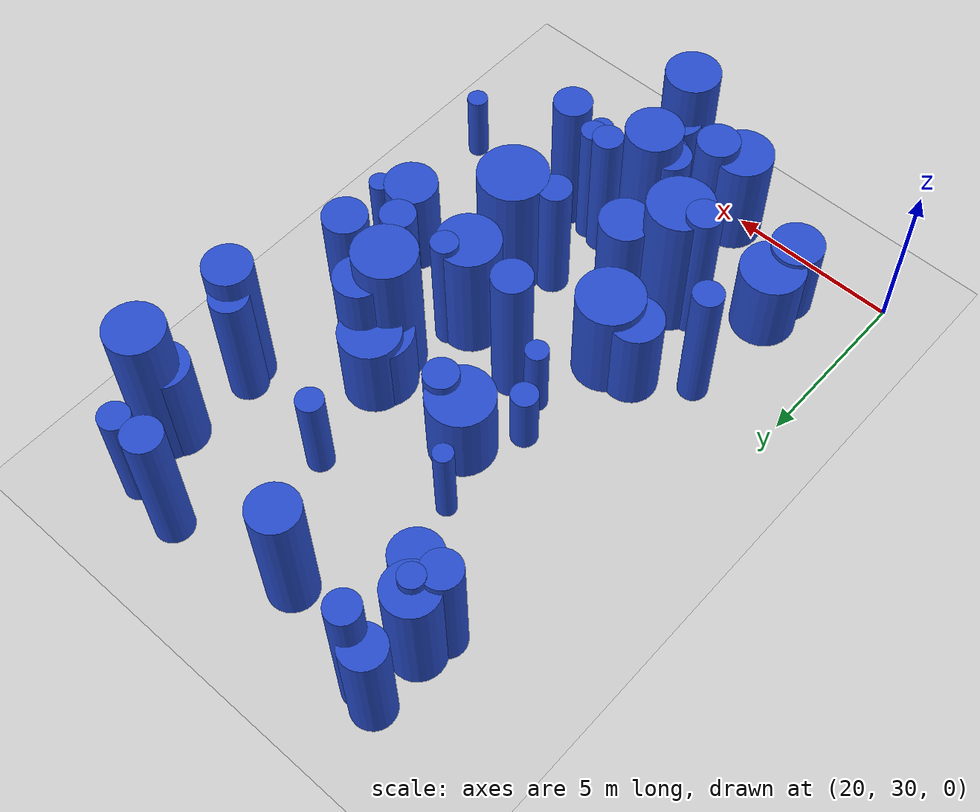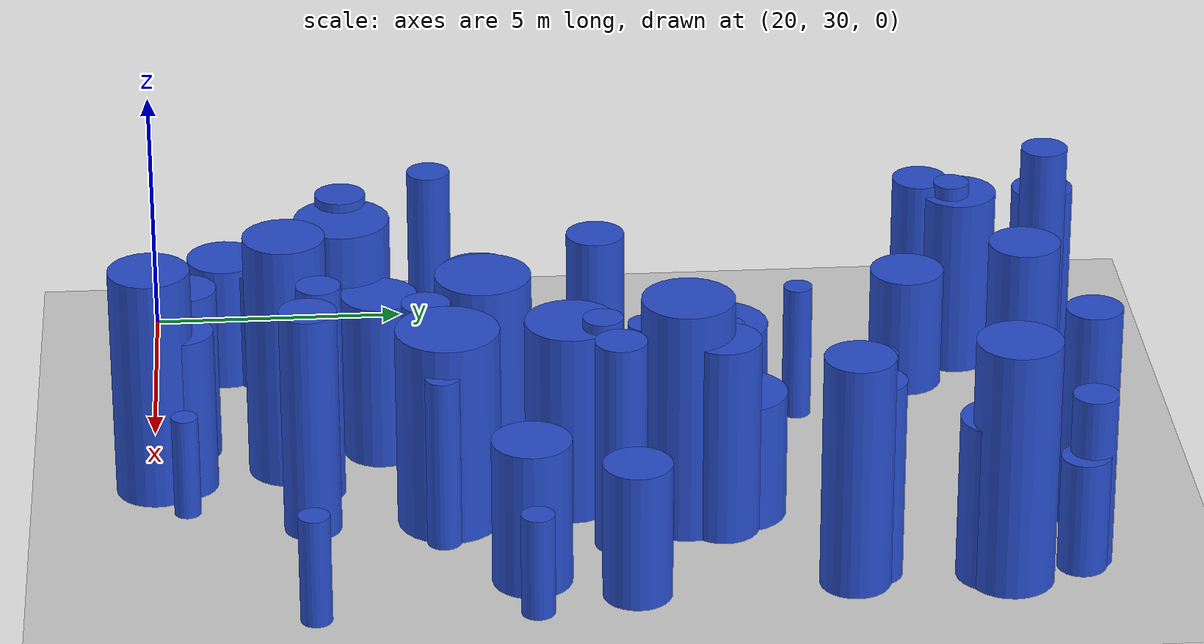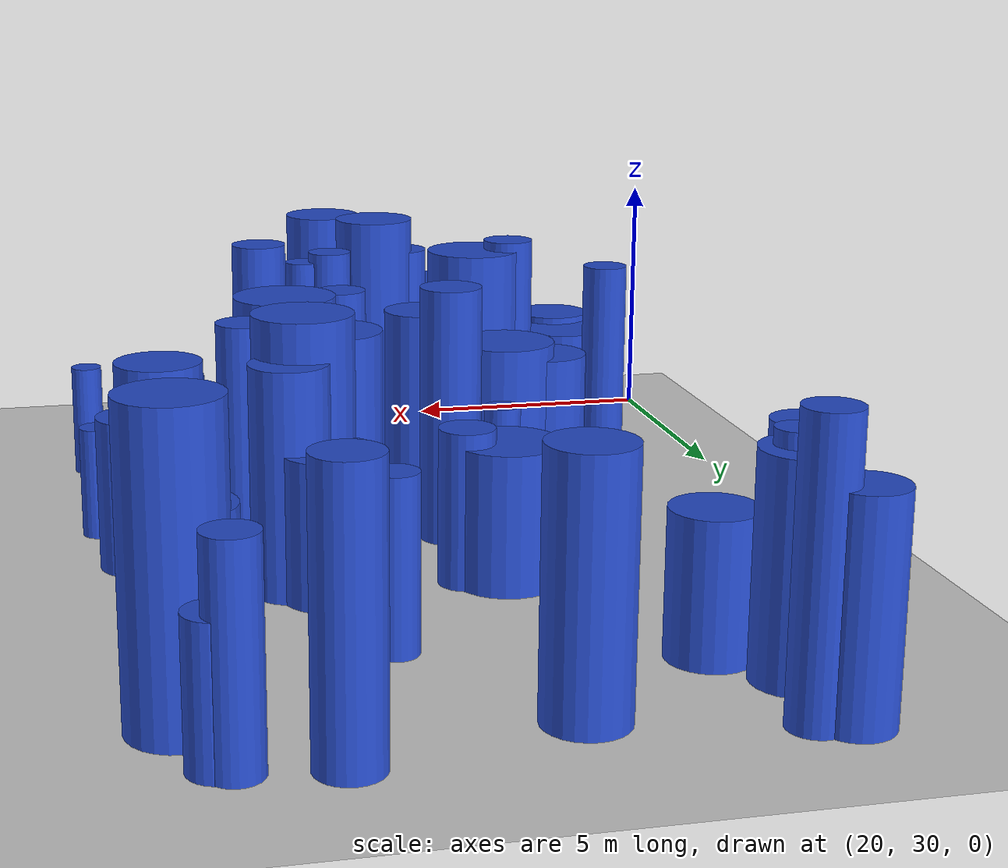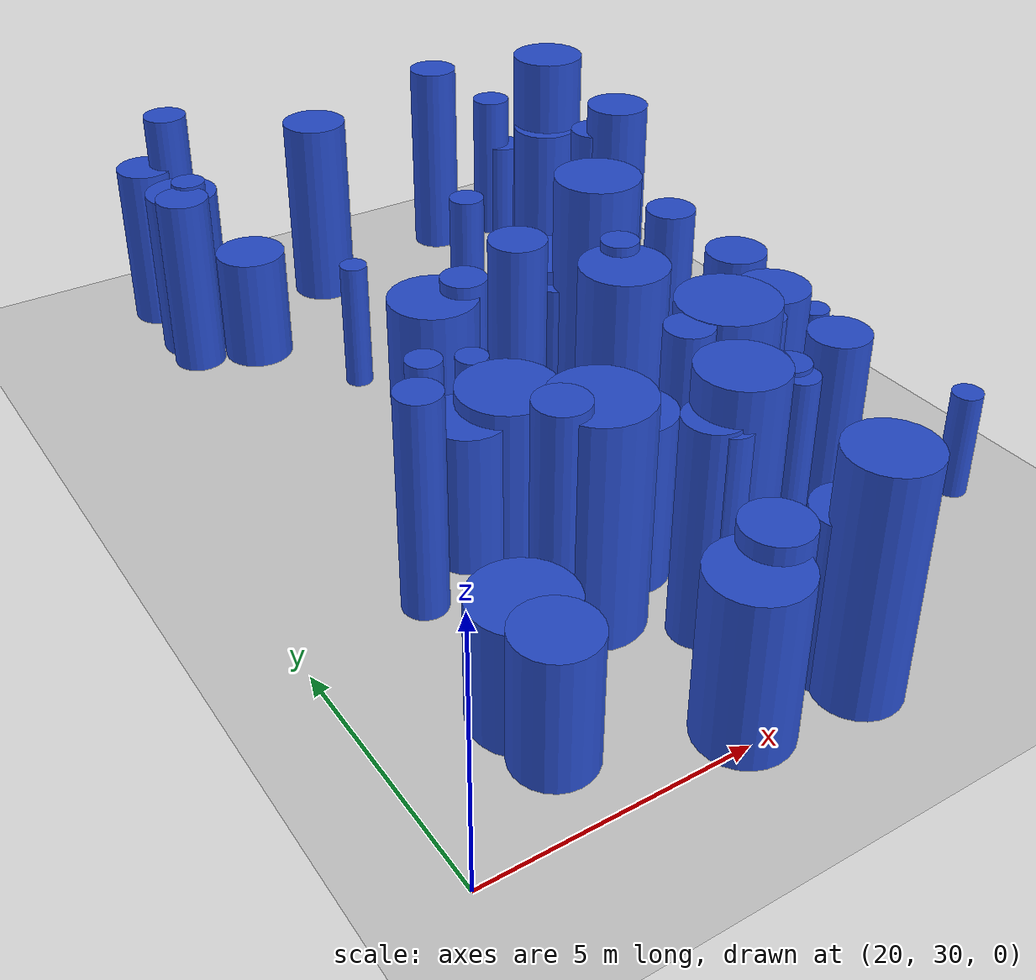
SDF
<sdf version="1.6">
 <world name="default">
  <model name="ground_plane">
   <static>1</static>
   <link name="link">
    <collision name="collision">
     <geometry><plane><normal>0 0 1</normal><size>100 100</size></plane></geometry>
     <surface><friction><ode><mu>100</mu><mu2>50</mu2></ode></friction></surface>
    </collision>
    <visual name="visual">
     <cast_shadows>0</cast_shadows>
     <geometry><plane><normal>0 0 1</normal><size>100 100</size></plane></geometry>
     <material>
      <script><uri>file://media/materials/scripts/gazebo.material</uri><name>Gazebo/Grey</name></script>
     </material>
    </visual>
   </link>
  </model>
  <model name="3">
   <static>0</static>
   <link name="link">
    <inertial>
     <mass>2</mass>
     <inertia><ixx>2.87295</ixx><ixy>0</ixy><ixz>0</ixz><iyy>2.87295</iyy><iyz>0</iyz><izz>0.289082</izz></inertia>
    </inertial>
    <collision name="collision">
     <geometry><cylinder><length>4.04604</length><radius>0.537664</radius></cylinder></geometry>
     <surface><contact><collide_without_contact>1</collide_without_contact></contact></surface>
    </collision>
    <visual name="visual">
     <geometry><cylinder><length>4.04604</length><radius>0.537664</radius></cylinder></geometry>
     <material>
      <script><uri>file://media/materials/scripts/gazebo.material</uri><name>Gazebo/Blue</name></script>
     </material>
    </visual>
    <gravity>0</gravity>
   </link>
   <pose>31.5919 43.4807 2.02302 0 -0 0</pose>
  </model>
  <model name="7">
   <static>0</static>
   <link name="link">
    <inertial>
     <mass>2</mass>
     <inertia><ixx>1.4943</ixx><ixy>0</ixy><ixz>0</ixz><iyy>1.4943</iyy><iyz>0</iyz><izz>0.904454</izz></inertia>
    </inertial>
    <collision name="collision">
     <geometry><cylinder><length>2.50048</length><radius>0.951028</radius></cylinder></geometry>
     <surface><contact><collide_without_contact>1</collide_without_contact></contact></surface>
    </collision>
    <visual name="visual">
     <geometry><cylinder><length>2.50048</length><radius>0.951028</radius></cylinder></geometry>
     <material>
      <script><uri>file://media/materials/scripts/gazebo.material</uri><name>Gazebo/Blue</name></script>
     </material>
    </visual>
    <gravity>0</gravity>
   </link>
   <pose>25.9011 41.0667 1.25024 0 -0 0</pose>
  </model>
  <model name="25">
   <static>0</static>
   <link name="link">
    <inertial>
     <mass>2</mass>
     <inertia><ixx>3.93705</ixx><ixy>0</ixy><ixz>0</ixz><iyy>3.93705</iyy><iyz>0</iyz><izz>0.614086</izz></inertia>
    </inertial>
    <collision name="collision">
     <geometry><cylinder><length>4.66691</length><radius>0.783636</radius></cylinder></geometry>
     <surface><contact><collide_without_contact>1</collide_without_contact></contact></surface>
    </collision>
    <visual name="visual">
     <geometry><cylinder><length>4.66691</length><radius>0.783636</radius></cylinder></geometry>
     <material>
      <script><uri>file://media/materials/scripts/gazebo.material</uri><name>Gazebo/Blue</name></script>
     </material>
    </visual>
    <gravity>0</gravity>
   </link>
   <pose>27.2784 30.0628 2.33346 0 -0 0</pose>
  </model>
  <model name="32">
   <static>0</static>
   <link name="link">
    <inertial>
     <mass>2</mass>
     <inertia><ixx>2.84004</ixx><ixy>0</ixy><ixz>0</ixz><iyy>2.84004</iyy><iyz>0</iyz><izz>0.148295</izz></inertia>
    </inertial>
    <collision name="collision">
     <geometry><cylinder><length>4.07374</length><radius>0.385092</radius></cylinder></geometry>
     <surface><contact><collide_without_contact>1</collide_without_contact></contact></surface>
    </collision>
    <visual name="visual">
     <geometry><cylinder><length>4.07374</length><radius>0.385092</radius></cylinder></geometry>
     <material>
      <script><uri>file://media/materials/scripts/gazebo.material</uri><name>Gazebo/Blue</name></script>
     </material>
    </visual>
    <gravity>0</gravity>
   </link>
   <pose>28.69 38.5987 2.03687 0 -0 0</pose>
  </model>
  <model name="54">
   <static>0</static>
   <link name="link">
    <inertial>
     <mass>2</mass>
     <inertia><ixx>2.65312</ixx><ixy>0</ixy><ixz>0</ixz><iyy>2.65312</iyy><iyz>0</iyz><izz>0.12546</izz></inertia>
    </inertial>
    <collision name="collision">
     <geometry><cylinder><length>3.94237</length><radius>0.354204</radius></cylinder></geometry>
     <surface><contact><collide_without_contact>1</collide_without_contact></contact></surface>
    </collision>
    <visual name="visual">
     <geometry><cylinder><length>3.94237</length><radius>0.354204</radius></cylinder></geometry>
     <material>
      <script><uri>file://media/materials/scripts/gazebo.material</uri><name>Gazebo/Blue</name></script>
     </material>
    </visual>
    <gravity>0</gravity>
   </link>
   <pose>22.8106 45.9834 1.97119 0 -0 0</pose>
  </model>
  <model name="58">
   <static>0</static>
   <link name="link">
    <inertial>
     <mass>2</mass>
     <inertia><ixx>1.07348</ixx><ixy>0</ixy><ixz>0</ixz><iyy>1.07348</iyy><iyz>0</iyz><izz>0.109076</izz></inertia>
    </inertial>
    <collision name="collision">
     <geometry><cylinder><length>2.47258</length><radius>0.330266</radius></cylinder></geometry>
     <surface><contact><collide_without_contact>1</collide_without_contact></contact></surface>
    </collision>
    <visual name="visual">
     <geometry><cylinder><length>2.47258</length><radius>0.330266</radius></cylinder></geometry>
     <material>
      <script><uri>file://media/materials/scripts/gazebo.material</uri><name>Gazebo/Blue</name></script>
     </material>
    </visual>
    <gravity>0</gravity>
   </link>
   <pose>25.3786 38.7126 1.23629 0 -0 0</pose>
  </model>
  <model name="61">
   <static>0</static>
   <link name="link">
    <inertial>
     <mass>2</mass>
     <inertia>
      <ixx>0.755586</ixx>
      <ixy>0</ixy>
      <ixz>0</ixz>
      <iyy>0.755586</iyy>
      <iyz>0</iyz>
      <izz>0.100977</izz>
     </inertia>
    </inertial>
    <collision name="collision">
     <geometry><cylinder><length>2.05684</length><radius>0.317769</radius></cylinder></geometry>
     <surface><contact><collide_without_contact>1</collide_without_contact></contact></surface>
    </collision>
    <visual name="visual">
     <geometry><cylinder><length>2.05684</length><radius>0.317769</radius></cylinder></geometry>
     <material>
      <script><uri>file://media/materials/scripts/gazebo.material</uri><name>Gazebo/Blue</name></script>
     </material>
    </visual>
    <gravity>0</gravity>
   </link>
   <pose>32.6546 37.1213 1.02842 0 -0 0</pose>
  </model>
  <model name="64">
   <static>0</static>
   <link name="link">
    <inertial>
     <mass>2</mass>
     <inertia><ixx>3.72268</ixx><ixy>0</ixy><ixz>0</ixz><iyy>3.72268</iyy><iyz>0</iyz><izz>0.868696</izz></inertia>
    </inertial>
    <collision name="collision">
     <geometry><cylinder><length>4.44185</length><radius>0.932039</radius></cylinder></geometry>
     <surface><contact><collide_without_contact>1</collide_without_contact></contact></surface>
    </collision>
    <visual name="visual">
     <geometry><cylinder><length>4.44185</length><radius>0.932039</radius></cylinder></geometry>
     <material>
      <script><uri>file://media/materials/scripts/gazebo.material</uri><name>Gazebo/Blue</name></script>
     </material>
    </visual>
    <gravity>0</gravity>
   </link>
   <pose>24.749 33.7716 2.22092 0 -0 0</pose>
  </model>
  <model name="66">
   <static>0</static>
   <link name="link">
    <inertial>
     <mass>2</mass>
     <inertia><ixx>2.90411</ixx><ixy>0</ixy><ixz>0</ixz><iyy>2.90411</iyy><iyz>0</iyz><izz>0.1065</izz></inertia>
    </inertial>
    <collision name="collision">
     <geometry><cylinder><length>4.13584</length><radius>0.326343</radius></cylinder></geometry>
     <surface><contact><collide_without_contact>1</collide_without_contact></contact></surface>
    </collision>
    <visual name="visual">
     <geometry><cylinder><length>4.13584</length><radius>0.326343</radius></cylinder></geometry>
     <material>
      <script><uri>file://media/materials/scripts/gazebo.material</uri><name>Gazebo/Blue</name></script>
     </material>
    </visual>
    <gravity>0</gravity>
   </link>
   <pose>28.1602 32.8868 2.06792 0 -0 0</pose>
  </model>
  <model name="81">
   <static>0</static>
   <link name="link">
    <inertial>
     <mass>2</mass>
     <inertia><ixx>2.82695</ixx><ixy>0</ixy><ixz>0</ixz><iyy>2.82695</iyy><iyz>0</iyz><izz>0.224047</izz></inertia>
    </inertial>
    <collision name="collision">
     <geometry><cylinder><length>4.03603</length><radius>0.473336</radius></cylinder></geometry>
     <surface><contact><collide_without_contact>1</collide_without_contact></contact></surface>
    </collision>
    <visual name="visual">
     <geometry><cylinder><length>4.03603</length><radius>0.473336</radius></cylinder></geometry>
     <material>
      <script><uri>file://media/materials/scripts/gazebo.material</uri><name>Gazebo/Blue</name></script>
     </material>
    </visual>
    <gravity>0</gravity>
   </link>
   <pose>27.7594 35.2916 2.01802 0 -0 0</pose>
  </model>
  <model name="98">
   <static>0</static>
   <link name="link">
    <inertial>
     <mass>2</mass>
     <inertia><ixx>1.39445</ixx><ixy>0</ixy><ixz>0</ixz><iyy>1.39445</iyy><iyz>0</iyz><izz>0.853352</izz></inertia>
    </inertial>
    <collision name="collision">
     <geometry><cylinder><length>2.4097</length><radius>0.92377</radius></cylinder></geometry>
     <surface><contact><collide_without_contact>1</collide_without_contact></contact></surface>
    </collision>
    <visual name="visual">
     <geometry><cylinder><length>2.4097</length><radius>0.92377</radius></cylinder></geometry>
     <material>
      <script><uri>file://media/materials/scripts/gazebo.material</uri><name>Gazebo/Blue</name></script>
     </material>
    </visual>
    <gravity>0</gravity>
   </link>
   <pose>22.4275 32.4383 1.20485 0 -0 0</pose>
  </model>
  <model name="103">
   <static>0</static>
   <link name="link">
    <inertial>
     <mass>2</mass>
     <inertia><ixx>2.90185</ixx><ixy>0</ixy><ixz>0</ixz><iyy>2.90185</iyy><iyz>0</iyz><izz>0.799227</izz></inertia>
    </inertial>
    <collision name="collision">
     <geometry><cylinder><length>3.87472</length><radius>0.893995</radius></cylinder></geometry>
     <surface><contact><collide_without_contact>1</collide_without_contact></contact></surface>
    </collision>
    <visual name="visual">
     <geometry><cylinder><length>3.87472</length><radius>0.893995</radius></cylinder></geometry>
     <material>
      <script><uri>file://media/materials/scripts/gazebo.material</uri><name>Gazebo/Blue</name></script>
     </material>
    </visual>
    <gravity>0</gravity>
   </link>
   <pose>28.3749 38.0165 1.93736 0 -0 0</pose>
  </model>
  <model name="127">
   <static>0</static>
   <link name="link">
    <inertial>
     <mass>2</mass>
     <inertia><ixx>3.25609</ixx><ixy>0</ixy><ixz>0</ixz><iyy>3.25609</iyy><iyz>0</iyz><izz>0.181995</izz></inertia>
    </inertial>
    <collision name="collision">
     <geometry><cylinder><length>4.35782</length><radius>0.426609</radius></cylinder></geometry>
     <surface><contact><collide_without_contact>1</collide_without_contact></contact></surface>
    </collision>
    <visual name="visual">
     <geometry><cylinder><length>4.35782</length><radius>0.426609</radius></cylinder></geometry>
     <material>
      <script><uri>file://media/materials/scripts/gazebo.material</uri><name>Gazebo/Blue</name></script>
     </material>
    </visual>
    <gravity>0</gravity>
   </link>
   <pose>22.4694 35.5467 2.17891 0 -0 0</pose>
  </model>
  <model name="129">
   <static>0</static>
   <link name="link">
    <inertial>
     <mass>2</mass>
     <inertia><ixx>1.26946</ixx><ixy>0</ixy><ixz>0</ixz><iyy>1.26946</iyy><iyz>0</iyz><izz>0.536917</izz></inertia>
    </inertial>
    <collision name="collision">
     <geometry><cylinder><length>2.45072</length><radius>0.732746</radius></cylinder></geometry>
     <surface><contact><collide_without_contact>1</collide_without_contact></contact></surface>
    </collision>
    <visual name="visual">
     <geometry><cylinder><length>2.45072</length><radius>0.732746</radius></cylinder></geometry>
     <material>
      <script><uri>file://media/materials/scripts/gazebo.material</uri><name>Gazebo/Blue</name></script>
     </material>
    </visual>
    <gravity>0</gravity>
   </link>
   <pose>23.6721 45.0275 1.22536 0 -0 0</pose>
  </model>
  <model name="132">
   <static>0</static>
   <link name="link">
    <inertial>
     <mass>2</mass>
     <inertia><ixx>1.34332</ixx><ixy>0</ixy><ixz>0</ixz><iyy>1.34332</iyy><iyz>0</iyz><izz>0.953483</izz></inertia>
    </inertial>
    <collision name="collision">
     <geometry><cylinder><length>2.28023</length><radius>0.976464</radius></cylinder></geometry>
     <surface><contact><collide_without_contact>1</collide_without_contact></contact></surface>
    </collision>
    <visual name="visual">
     <geometry><cylinder><length>2.28023</length><radius>0.976464</radius></cylinder></geometry>
     <material>
      <script><uri>file://media/materials/scripts/gazebo.material</uri><name>Gazebo/Blue</name></script>
     </material>
    </visual>
    <gravity>0</gravity>
   </link>
   <pose>28.9866 40.9178 1.14011 0 -0 0</pose>
  </model>
  <model name="133">
   <static>0</static>
   <link name="link">
    <inertial>
     <mass>2</mass>
     <inertia><ixx>3.03693</ixx><ixy>0</ixy><ixz>0</ixz><iyy>3.03693</iyy><iyz>0</iyz><izz>0.127756</izz></inertia>
    </inertial>
    <collision name="collision">
     <geometry><cylinder><length>4.22354</length><radius>0.35743</radius></cylinder></geometry>
     <surface><contact><collide_without_contact>1</collide_without_contact></contact></surface>
    </collision>
    <visual name="visual">
     <geometry><cylinder><length>4.22354</length><radius>0.35743</radius></cylinder></geometry>
     <material>
      <script><uri>file://media/materials/scripts/gazebo.material</uri><name>Gazebo/Blue</name></script>
     </material>
    </visual>
    <gravity>0</gravity>
   </link>
   <pose>28.1932 33.193 2.11177 0 -0 0</pose>
  </model>
  <model name="159">
   <static>0</static>
   <link name="link">
    <inertial>
     <mass>2</mass>
     <inertia><ixx>2.39022</ixx><ixy>0</ixy><ixz>0</ixz><iyy>2.39022</iyy><iyz>0</iyz><izz>0.376339</izz></inertia>
    </inertial>
    <collision name="collision">
     <geometry><cylinder><length>3.63487</length><radius>0.613464</radius></cylinder></geometry>
     <surface><contact><collide_without_contact>1</collide_without_contact></contact></surface>
    </collision>
    <visual name="visual">
     <geometry><cylinder><length>3.63487</length><radius>0.613464</radius></cylinder></geometry>
     <material>
      <script><uri>file://media/materials/scripts/gazebo.material</uri><name>Gazebo/Blue</name></script>
     </material>
    </visual>
    <gravity>0</gravity>
   </link>
   <pose>22.537 47.8672 1.81744 0 -0 0</pose>
  </model>
  <model name="160">
   <static>0</static>
   <link name="link">
    <inertial>
     <mass>2</mass>
     <inertia><ixx>4.07176</ixx><ixy>0</ixy><ixz>0</ixz><iyy>4.07176</iyy><iyz>0</iyz><izz>0.790675</izz></inertia>
    </inertial>
    <collision name="collision">
     <geometry><cylinder><length>4.69665</length><radius>0.889199</radius></cylinder></geometry>
     <surface><contact><collide_without_contact>1</collide_without_contact></contact></surface>
    </collision>
    <visual name="visual">
     <geometry><cylinder><length>4.69665</length><radius>0.889199</radius></cylinder></geometry>
     <material>
      <script><uri>file://media/materials/scripts/gazebo.material</uri><name>Gazebo/Blue</name></script>
     </material>
    </visual>
    <gravity>0</gravity>
   </link>
   <pose>29.2668 40.163 2.34833 0 -0 0</pose>
  </model>
  <model name="163">
   <static>0</static>
   <link name="link">
    <inertial>
     <mass>2</mass>
     <inertia><ixx>2.11099</ixx><ixy>0</ixy><ixz>0</ixz><iyy>2.11099</iyy><iyz>0</iyz><izz>0.90581</izz></inertia>
    </inertial>
    <collision name="collision">
     <geometry><cylinder><length>3.15413</length><radius>0.951741</radius></cylinder></geometry>
     <surface><contact><collide_without_contact>1</collide_without_contact></contact></surface>
    </collision>
    <visual name="visual">
     <geometry><cylinder><length>3.15413</length><radius>0.951741</radius></cylinder></geometry>
     <material>
      <script><uri>file://media/materials/scripts/gazebo.material</uri><name>Gazebo/Blue</name></script>
     </material>
    </visual>
    <gravity>0</gravity>
   </link>
   <pose>24.7666 36.5112 1.57706 0 -0 0</pose>
  </model>
  <model name="166">
   <static>0</static>
   <link name="link">
    <inertial>
     <mass>2</mass>
     <inertia><ixx>4.43019</ixx><ixy>0</ixy><ixz>0</ixz><iyy>4.43019</iyy><iyz>0</iyz><izz>0.627895</izz></inertia>
    </inertial>
    <collision name="collision">
     <geometry><cylinder><length>4.96965</length><radius>0.792399</radius></cylinder></geometry>
     <surface><contact><collide_without_contact>1</collide_without_contact></contact></surface>
    </collision>
    <visual name="visual">
     <geometry><cylinder><length>4.96965</length><radius>0.792399</radius></cylinder></geometry>
     <material>
      <script><uri>file://media/materials/scripts/gazebo.material</uri><name>Gazebo/Blue</name></script>
     </material>
    </visual>
    <gravity>0</gravity>
   </link>
   <pose>26.6027 32.6341 2.48483 0 -0 0</pose>
  </model>
  <model name="187">
   <static>0</static>
   <link name="link">
    <inertial>
     <mass>2</mass>
     <inertia><ixx>3.90208</ixx><ixy>0</ixy><ixz>0</ixz><iyy>3.90208</iyy><iyz>0</iyz><izz>0.455166</izz></inertia>
    </inertial>
    <collision name="collision">
     <geometry><cylinder><length>4.69542</length><radius>0.67466</radius></cylinder></geometry>
     <surface><contact><collide_without_contact>1</collide_without_contact></contact></surface>
    </collision>
    <visual name="visual">
     <geometry><cylinder><length>4.69542</length><radius>0.67466</radius></cylinder></geometry>
     <material>
      <script><uri>file://media/materials/scripts/gazebo.material</uri><name>Gazebo/Blue</name></script>
     </material>
    </visual>
    <gravity>0</gravity>
   </link>
   <pose>31.9163 43.0917 2.34771 0 -0 0</pose>
  </model>
  <model name="191">
   <static>0</static>
   <link name="link">
    <inertial>
     <mass>2</mass>
     <inertia><ixx>2.66114</ixx><ixy>0</ixy><ixz>0</ixz><iyy>2.66114</iyy><iyz>0</iyz><izz>0.299276</izz></inertia>
    </inertial>
    <collision name="collision">
     <geometry><cylinder><length>3.88188</length><radius>0.547062</radius></cylinder></geometry>
     <surface><contact><collide_without_contact>1</collide_without_contact></contact></surface>
    </collision>
    <visual name="visual">
     <geometry><cylinder><length>3.88188</length><radius>0.547062</radius></cylinder></geometry>
     <material>
      <script><uri>file://media/materials/scripts/gazebo.material</uri><name>Gazebo/Blue</name></script>
     </material>
    </visual>
    <gravity>0</gravity>
   </link>
   <pose>22.434 45.396 1.94094 0 -0 0</pose>
  </model>
  <model name="202">
   <static>0</static>
   <link name="link">
    <inertial>
     <mass>2</mass>
     <inertia><ixx>2.13112</ixx><ixy>0</ixy><ixz>0</ixz><iyy>2.13112</iyy><iyz>0</iyz><izz>0.188496</izz></inertia>
    </inertial>
    <collision name="collision">
     <geometry><cylinder><length>3.49589</length><radius>0.434161</radius></cylinder></geometry>
     <surface><contact><collide_without_contact>1</collide_without_contact></contact></surface>
    </collision>
    <visual name="visual">
     <geometry><cylinder><length>3.49589</length><radius>0.434161</radius></cylinder></geometry>
     <material>
      <script><uri>file://media/materials/scripts/gazebo.material</uri><name>Gazebo/Blue</name></script>
     </material>
    </visual>
    <gravity>0</gravity>
   </link>
   <pose>31.3768 47.5746 1.74794 0 -0 0</pose>
  </model>
  <model name="207">
   <static>0</static>
   <link name="link">
    <inertial>
     <mass>2</mass>
     <inertia><ixx>2.27306</ixx><ixy>0</ixy><ixz>0</ixz><iyy>2.27306</iyy><iyz>0</iyz><izz>0.377745</izz></inertia>
    </inertial>
    <collision name="collision">
     <geometry><cylinder><length>3.53626</length><radius>0.61461</radius></cylinder></geometry>
     <surface><contact><collide_without_contact>1</collide_without_contact></contact></surface>
    </collision>
    <visual name="visual">
     <geometry><cylinder><length>3.53626</length><radius>0.61461</radius></cylinder></geometry>
     <material>
      <script><uri>file://media/materials/scripts/gazebo.material</uri><name>Gazebo/Blue</name></script>
     </material>
    </visual>
    <gravity>0</gravity>
   </link>
   <pose>25.7611 30.6959 1.76813 0 -0 0</pose>
  </model>
  <model name="212">
   <static>0</static>
   <link name="link">
    <inertial>
     <mass>2</mass>
     <inertia><ixx>2.0892</ixx><ixy>0</ixy><ixz>0</ixz><iyy>2.0892</iyy><iyz>0</iyz><izz>0.556859</izz></inertia>
    </inertial>
    <collision name="collision">
     <geometry><cylinder><length>3.29615</length><radius>0.74623</radius></cylinder></geometry>
     <surface><contact><collide_without_contact>1</collide_without_contact></contact></surface>
    </collision>
    <visual name="visual">
     <geometry><cylinder><length>3.29615</length><radius>0.74623</radius></cylinder></geometry>
     <material>
      <script><uri>file://media/materials/scripts/gazebo.material</uri><name>Gazebo/Blue</name></script>
     </material>
    </visual>
    <gravity>0</gravity>
   </link>
   <pose>31.7746 45.7397 1.64808 0 -0 0</pose>
  </model>
  <model name="220">
   <static>0</static>
   <link name="link">
    <inertial>
     <mass>2</mass>
     <inertia><ixx>1.33012</ixx><ixy>0</ixy><ixz>0</ixz><iyy>1.33012</iyy><iyz>0</iyz><izz>0.081176</izz></inertia>
    </inertial>
    <collision name="collision">
     <geometry><cylinder><length>2.78158</length><radius>0.284914</radius></cylinder></geometry>
     <surface><contact><collide_without_contact>1</collide_without_contact></contact></surface>
    </collision>
    <visual name="visual">
     <geometry><cylinder><length>2.78158</length><radius>0.284914</radius></cylinder></geometry>
     <material>
      <script><uri>file://media/materials/scripts/gazebo.material</uri><name>Gazebo/Blue</name></script>
     </material>
    </visual>
    <gravity>0</gravity>
   </link>
   <pose>24.9616 42.705 1.39079 0 -0 0</pose>
  </model>
  <model name="227">
   <static>0</static>
   <link name="link">
    <inertial>
     <mass>2</mass>
     <inertia><ixx>1.36119</ixx><ixy>0</ixy><ixz>0</ixz><iyy>1.36119</iyy><iyz>0</iyz><izz>0.562468</izz></inertia>
    </inertial>
    <collision name="collision">
     <geometry><cylinder><length>2.54553</length><radius>0.749979</radius></cylinder></geometry>
     <surface><contact><collide_without_contact>1</collide_without_contact></contact></surface>
    </collision>
    <visual name="visual">
     <geometry><cylinder><length>2.54553</length><radius>0.749979</radius></cylinder></geometry>
     <material>
      <script><uri>file://media/materials/scripts/gazebo.material</uri><name>Gazebo/Blue</name></script>
     </material>
    </visual>
    <gravity>0</gravity>
   </link>
   <pose>22.3489 31.445 1.27276 0 -0 0</pose>
  </model>
  <model name="241">
   <static>0</static>
   <link name="link">
    <inertial>
     <mass>2</mass>
     <inertia><ixx>3.17466</ixx><ixy>0</ixy><ixz>0</ixz><iyy>3.17466</iyy><iyz>0</iyz><izz>0.246086</izz></inertia>
    </inertial>
    <collision name="collision">
     <geometry><cylinder><length>4.27898</length><radius>0.496071</radius></cylinder></geometry>
     <surface><contact><collide_without_contact>1</collide_without_contact></contact></surface>
    </collision>
    <visual name="visual">
     <geometry><cylinder><length>4.27898</length><radius>0.496071</radius></cylinder></geometry>
     <material>
      <script><uri>file://media/materials/scripts/gazebo.material</uri><name>Gazebo/Blue</name></script>
     </material>
    </visual>
    <gravity>0</gravity>
   </link>
   <pose>30.1099 38.8378 2.13949 0 -0 0</pose>
  </model>
  <model name="251">
   <static>0</static>
   <link name="link">
    <inertial>
     <mass>2</mass>
     <inertia><ixx>3.89053</ixx><ixy>0</ixy><ixz>0</ixz><iyy>3.89053</iyy><iyz>0</iyz><izz>0.213021</izz></inertia>
    </inertial>
    <collision name="collision">
     <geometry><cylinder><length>4.76488</length><radius>0.461542</radius></cylinder></geometry>
     <surface><contact><collide_without_contact>1</collide_without_contact></contact></surface>
    </collision>
    <visual name="visual">
     <geometry><cylinder><length>4.76488</length><radius>0.461542</radius></cylinder></geometry>
     <material>
      <script><uri>file://media/materials/scripts/gazebo.material</uri><name>Gazebo/Blue</name></script>
     </material>
    </visual>
    <gravity>0</gravity>
   </link>
   <pose>23.1037 47.7882 2.38244 0 -0 0</pose>
  </model>
  <model name="253">
   <static>0</static>
   <link name="link">
    <inertial>
     <mass>2</mass>
     <inertia><ixx>3.34971</ixx><ixy>0</ixy><ixz>0</ixz><iyy>3.34971</iyy><iyz>0</iyz><izz>0.185236</izz></inertia>
    </inertial>
    <collision name="collision">
     <geometry><cylinder><length>4.42069</length><radius>0.43039</radius></cylinder></geometry>
     <surface><contact><collide_without_contact>1</collide_without_contact></contact></surface>
    </collision>
    <visual name="visual">
     <geometry><cylinder><length>4.42069</length><radius>0.43039</radius></cylinder></geometry>
     <material>
      <script><uri>file://media/materials/scripts/gazebo.material</uri><name>Gazebo/Blue</name></script>
     </material>
    </visual>
    <gravity>0</gravity>
   </link>
   <pose>27.6476 33.2618 2.21035 0 -0 0</pose>
  </model>
  <model name="255">
   <static>0</static>
   <link name="link">
    <inertial>
     <mass>2</mass>
     <inertia><ixx>3.03053</ixx><ixy>0</ixy><ixz>0</ixz><iyy>3.03053</iyy><iyz>0</iyz><izz>0.136539</izz></inertia>
    </inertial>
    <collision name="collision">
     <geometry><cylinder><length>4.21587</length><radius>0.369511</radius></cylinder></geometry>
     <surface><contact><collide_without_contact>1</collide_without_contact></contact></surface>
    </collision>
    <visual name="visual">
     <geometry><cylinder><length>4.21587</length><radius>0.369511</radius></cylinder></geometry>
     <material>
      <script><uri>file://media/materials/scripts/gazebo.material</uri><name>Gazebo/Blue</name></script>
     </material>
    </visual>
    <gravity>0</gravity>
   </link>
   <pose>26.158 32.2461 2.10794 0 -0 0</pose>
  </model>
  <model name="261">
   <static>0</static>
   <link name="link">
    <inertial>
     <mass>2</mass>
     <inertia><ixx>3.19756</ixx><ixy>0</ixy><ixz>0</ixz><iyy>3.19756</iyy><iyz>0</iyz><izz>0.487958</izz></inertia>
    </inertial>
    <collision name="collision">
     <geometry><cylinder><length>4.20969</length><radius>0.69854</radius></cylinder></geometry>
     <surface><contact><collide_without_contact>1</collide_without_contact></contact></surface>
    </collision>
    <visual name="visual">
     <geometry><cylinder><length>4.20969</length><radius>0.69854</radius></cylinder></geometry>
     <material>
      <script><uri>file://media/materials/scripts/gazebo.material</uri><name>Gazebo/Blue</name></script>
     </material>
    </visual>
    <gravity>0</gravity>
   </link>
   <pose>26.2647 46.9546 2.10484 0 -0 0</pose>
  </model>
  <model name="271">
   <static>0</static>
   <link name="link">
    <inertial>
     <mass>2</mass>
     <inertia>
      <ixx>0.742108</ixx>
      <ixy>0</ixy>
      <ixz>0</ixz>
      <iyy>0.742108</iyy>
      <iyz>0</iyz>
      <izz>0.0658136</izz>
     </inertia>
    </inertial>
    <collision name="collision">
     <geometry><cylinder><length>2.06281</length><radius>0.256542</radius></cylinder></geometry>
     <surface><contact><collide_without_contact>1</collide_without_contact></contact></surface>
    </collision>
    <visual name="visual">
     <geometry><cylinder><length>2.06281</length><radius>0.256542</radius></cylinder></geometry>
     <material>
      <script><uri>file://media/materials/scripts/gazebo.material</uri><name>Gazebo/Blue</name></script>
     </material>
    </visual>
    <gravity>0</gravity>
   </link>
   <pose>28.3174 30.6539 1.03141 0 -0 0</pose>
  </model>
  <model name="296">
   <static>0</static>
   <link name="link">
    <inertial>
     <mass>2</mass>
     <inertia><ixx>3.85489</ixx><ixy>0</ixy><ixz>0</ixz><iyy>3.85489</iyy><iyz>0</iyz><izz>0.314272</izz></inertia>
    </inertial>
    <collision name="collision">
     <geometry><cylinder><length>4.71026</length><radius>0.560599</radius></cylinder></geometry>
     <surface><contact><collide_without_contact>1</collide_without_contact></contact></surface>
    </collision>
    <visual name="visual">
     <geometry><cylinder><length>4.71026</length><radius>0.560599</radius></cylinder></geometry>
     <material>
      <script><uri>file://media/materials/scripts/gazebo.material</uri><name>Gazebo/Blue</name></script>
     </material>
    </visual>
    <gravity>0</gravity>
   </link>
   <pose>26.3349 38.6095 2.35513 0 -0 0</pose>
  </model>
  <model name="302">
   <static>0</static>
   <link name="link">
    <inertial>
     <mass>2</mass>
     <inertia><ixx>3.21966</ixx><ixy>0</ixy><ixz>0</ixz><iyy>3.21966</iyy><iyz>0</iyz><izz>0.298052</izz></inertia>
    </inertial>
    <collision name="collision">
     <geometry><cylinder><length>4.29229</length><radius>0.545942</radius></cylinder></geometry>
     <surface><contact><collide_without_contact>1</collide_without_contact></contact></surface>
    </collision>
    <visual name="visual">
     <geometry><cylinder><length>4.29229</length><radius>0.545942</radius></cylinder></geometry>
     <material>
      <script><uri>file://media/materials/scripts/gazebo.material</uri><name>Gazebo/Blue</name></script>
     </material>
    </visual>
    <gravity>0</gravity>
   </link>
   <pose>26.0288 32.5388 2.14615 0 -0 0</pose>
  </model>
  <model name="303">
   <static>0</static>
   <link name="link">
    <inertial>
     <mass>2</mass>
     <inertia><ixx>3.22358</ixx><ixy>0</ixy><ixz>0</ixz><iyy>3.22358</iyy><iyz>0</iyz><izz>0.989819</izz></inertia>
    </inertial>
    <collision name="collision">
     <geometry><cylinder><length>4.04624</length><radius>0.994897</radius></cylinder></geometry>
     <surface><contact><collide_without_contact>1</collide_without_contact></contact></surface>
    </collision>
    <visual name="visual">
     <geometry><cylinder><length>4.04624</length><radius>0.994897</radius></cylinder></geometry>
     <material>
      <script><uri>file://media/materials/scripts/gazebo.material</uri><name>Gazebo/Blue</name></script>
     </material>
    </visual>
    <gravity>0</gravity>
   </link>
   <pose>28.9329 35.6476 2.02312 0 -0 0</pose>
  </model>
  <model name="309">
   <static>0</static>
   <link name="link">
    <inertial>
     <mass>2</mass>
     <inertia><ixx>3.55759</ixx><ixy>0</ixy><ixz>0</ixz><iyy>3.55759</iyy><iyz>0</iyz><izz>0.294317</izz></inertia>
    </inertial>
    <collision name="collision">
     <geometry><cylinder><length>4.52356</length><radius>0.54251</radius></cylinder></geometry>
     <surface><contact><collide_without_contact>1</collide_without_contact></contact></surface>
    </collision>
    <visual name="visual">
     <geometry><cylinder><length>4.52356</length><radius>0.54251</radius></cylinder></geometry>
     <material>
      <script><uri>file://media/materials/scripts/gazebo.material</uri><name>Gazebo/Blue</name></script>
     </material>
    </visual>
    <gravity>0</gravity>
   </link>
   <pose>29.8431 47.747 2.26178 0 -0 0</pose>
  </model>
  <model name="332">
   <static>0</static>
   <link name="link">
    <inertial>
     <mass>2</mass>
     <inertia><ixx>2.08521</ixx><ixy>0</ixy><ixz>0</ixz><iyy>2.08521</iyy><iyz>0</iyz><izz>0.109785</izz></inertia>
    </inertial>
    <collision name="collision">
     <geometry><cylinder><length>3.49026</length><radius>0.331338</radius></cylinder></geometry>
     <surface><contact><collide_without_contact>1</collide_without_contact></contact></surface>
    </collision>
    <visual name="visual">
     <geometry><cylinder><length>3.49026</length><radius>0.331338</radius></cylinder></geometry>
     <material>
      <script><uri>file://media/materials/scripts/gazebo.material</uri><name>Gazebo/Blue</name></script>
     </material>
    </visual>
    <gravity>0</gravity>
   </link>
   <pose>29.8365 35.5101 1.74513 0 -0 0</pose>
  </model>
  <model name="345">
   <static>0</static>
   <link name="link">
    <inertial>
     <mass>2</mass>
     <inertia><ixx>3.66418</ixx><ixy>0</ixy><ixz>0</ixz><iyy>3.66418</iyy><iyz>0</iyz><izz>0.301067</izz></inertia>
    </inertial>
    <collision name="collision">
     <geometry><cylinder><length>4.5915</length><radius>0.548696</radius></cylinder></geometry>
     <surface><contact><collide_without_contact>1</collide_without_contact></contact></surface>
    </collision>
    <visual name="visual">
     <geometry><cylinder><length>4.5915</length><radius>0.548696</radius></cylinder></geometry>
     <material>
      <script><uri>file://media/materials/scripts/gazebo.material</uri><name>Gazebo/Blue</name></script>
     </material>
    </visual>
    <gravity>0</gravity>
   </link>
   <pose>29.0784 33.0373 2.29575 0 -0 0</pose>
  </model>
  <model name="359">
   <static>0</static>
   <link name="link">
    <inertial>
     <mass>2</mass>
     <inertia><ixx>1.40483</ixx><ixy>0</ixy><ixz>0</ixz><iyy>1.40483</iyy><iyz>0</iyz><izz>0.245176</izz></inertia>
    </inertial>
    <collision name="collision">
     <geometry><cylinder><length>2.77371</length><radius>0.495152</radius></cylinder></geometry>
     <surface><contact><collide_without_contact>1</collide_without_contact></contact></surface>
    </collision>
    <visual name="visual">
     <geometry><cylinder><length>2.77371</length><radius>0.495152</radius></cylinder></geometry>
     <material>
      <script><uri>file://media/materials/scripts/gazebo.material</uri><name>Gazebo/Blue</name></script>
     </material>
    </visual>
    <gravity>0</gravity>
   </link>
   <pose>26.6032 41.0238 1.38686 0 -0 0</pose>
  </model>
  <model name="375">
   <static>0</static>
   <link name="link">
    <inertial>
     <mass>2</mass>
     <inertia><ixx>1.73126</ixx><ixy>0</ixy><ixz>0</ixz><iyy>1.73126</iyy><iyz>0</iyz><izz>0.573567</izz></inertia>
    </inertial>
    <collision name="collision">
     <geometry><cylinder><length>2.94395</length><radius>0.757342</radius></cylinder></geometry>
     <surface><contact><collide_without_contact>1</collide_without_contact></contact></surface>
    </collision>
    <visual name="visual">
     <geometry><cylinder><length>2.94395</length><radius>0.757342</radius></cylinder></geometry>
     <material>
      <script><uri>file://media/materials/scripts/gazebo.material</uri><name>Gazebo/Blue</name></script>
     </material>
    </visual>
    <gravity>0</gravity>
   </link>
   <pose>31.4065 37.087 1.47197 0 -0 0</pose>
  </model>
  <model name="376">
   <static>0</static>
   <link name="link">
    <inertial>
     <mass>2</mass>
     <inertia><ixx>3.68749</ixx><ixy>0</ixy><ixz>0</ixz><iyy>3.68749</iyy><iyz>0</iyz><izz>0.246514</izz></inertia>
    </inertial>
    <collision name="collision">
     <geometry><cylinder><length>4.62443</length><radius>0.496502</radius></cylinder></geometry>
     <surface><contact><collide_without_contact>1</collide_without_contact></contact></surface>
    </collision>
    <visual name="visual">
     <geometry><cylinder><length>4.62443</length><radius>0.496502</radius></cylinder></geometry>
     <material>
      <script><uri>file://media/materials/scripts/gazebo.material</uri><name>Gazebo/Blue</name></script>
     </material>
    </visual>
    <gravity>0</gravity>
   </link>
   <pose>23.9991 33.7651 2.31222 0 -0 0</pose>
  </model>
  <model name="384">
   <static>0</static>
   <link name="link">
    <inertial>
     <mass>2</mass>
     <inertia><ixx>2.18199</ixx><ixy>0</ixy><ixz>0</ixz><iyy>2.18199</iyy><iyz>0</iyz><izz>0.549446</izz></inertia>
    </inertial>
    <collision name="collision">
     <geometry><cylinder><length>3.38284</length><radius>0.741247</radius></cylinder></geometry>
     <surface><contact><collide_without_contact>1</collide_without_contact></contact></surface>
    </collision>
    <visual name="visual">
     <geometry><cylinder><length>3.38284</length><radius>0.741247</radius></cylinder></geometry>
     <material>
      <script><uri>file://media/materials/scripts/gazebo.material</uri><name>Gazebo/Blue</name></script>
     </material>
    </visual>
    <gravity>0</gravity>
   </link>
   <pose>25.9849 34.4431 1.69142 0 -0 0</pose>
  </model>
  <model name="396">
   <static>0</static>
   <link name="link">
    <inertial>
     <mass>2</mass>
     <inertia>
      <ixx>0.770719</ixx>
      <ixy>0</ixy>
      <ixz>0</ixz>
      <iyy>0.770719</iyy>
      <iyz>0</iyz>
      <izz>0.149023</izz>
     </inertia>
    </inertial>
    <collision name="collision">
     <geometry><cylinder><length>2.04383</length><radius>0.386034</radius></cylinder></geometry>
     <surface><contact><collide_without_contact>1</collide_without_contact></contact></surface>
    </collision>
    <visual name="visual">
     <geometry><cylinder><length>2.04383</length><radius>0.386034</radius></cylinder></geometry>
     <material>
      <script><uri>file://media/materials/scripts/gazebo.material</uri><name>Gazebo/Blue</name></script>
     </material>
    </visual>
    <gravity>0</gravity>
   </link>
   <pose>24.8972 39.7357 1.02192 0 -0 0</pose>
  </model>
  <model name="398">
   <static>0</static>
   <link name="link">
    <inertial>
     <mass>2</mass>
     <inertia><ixx>2.06558</ixx><ixy>0</ixy><ixz>0</ixz><iyy>2.06558</iyy><iyz>0</iyz><izz>0.735706</izz></inertia>
    </inertial>
    <collision name="collision">
     <geometry><cylinder><length>3.19161</length><radius>0.857733</radius></cylinder></geometry>
     <surface><contact><collide_without_contact>1</collide_without_contact></contact></surface>
    </collision>
    <visual name="visual">
     <geometry><cylinder><length>3.19161</length><radius>0.857733</radius></cylinder></geometry>
     <material>
      <script><uri>file://media/materials/scripts/gazebo.material</uri><name>Gazebo/Blue</name></script>
     </material>
    </visual>
    <gravity>0</gravity>
   </link>
   <pose>25.1228 30.3216 1.59581 0 -0 0</pose>
  </model>
  <model name="405">
   <static>0</static>
   <link name="link">
    <inertial>
     <mass>2</mass>
     <inertia><ixx>1.48057</ixx><ixy>0</ixy><ixz>0</ixz><iyy>1.48057</iyy><iyz>0</iyz><izz>0.763013</izz></inertia>
    </inertial>
    <collision name="collision">
     <geometry><cylinder><length>2.56795</length><radius>0.873506</radius></cylinder></geometry>
     <surface><contact><collide_without_contact>1</collide_without_contact></contact></surface>
    </collision>
    <visual name="visual">
     <geometry><cylinder><length>2.56795</length><radius>0.873506</radius></cylinder></geometry>
     <material>
      <script><uri>file://media/materials/scripts/gazebo.material</uri><name>Gazebo/Blue</name></script>
     </material>
    </visual>
    <gravity>0</gravity>
   </link>
   <pose>28.9799 41.2181 1.28397 0 -0 0</pose>
  </model>
  <model name="428">
   <static>0</static>
   <link name="link">
    <inertial>
     <mass>2</mass>
     <inertia>
      <ixx>0.846092</ixx>
      <ixy>0</ixy>
      <ixz>0</ixz>
      <iyy>0.846092</iyy>
      <iyz>0</iyz>
      <izz>0.0893023</izz>
     </inertia>
    </inertial>
    <collision name="collision">
     <geometry><cylinder><length>2.19286</length><radius>0.298835</radius></cylinder></geometry>
     <surface><contact><collide_without_contact>1</collide_without_contact></contact></surface>
    </collision>
    <visual name="visual">
     <geometry><cylinder><length>2.19286</length><radius>0.298835</radius></cylinder></geometry>
     <material>
      <script><uri>file://media/materials/scripts/gazebo.material</uri><name>Gazebo/Blue</name></script>
     </material>
    </visual>
    <gravity>0</gravity>
   </link>
   <pose>32.6524 33.0298 1.09643 0 -0 0</pose>
  </model>
  <model name="444">
   <static>0</static>
   <link name="link">
    <inertial>
     <mass>2</mass>
     <inertia><ixx>1.01246</ixx><ixy>0</ixy><ixz>0</ixz><iyy>1.01246</iyy><iyz>0</iyz><izz>0.223221</izz></inertia>
    </inertial>
    <collision name="collision">
     <geometry><cylinder><length>2.32489</length><radius>0.472463</radius></cylinder></geometry>
     <surface><contact><collide_without_contact>1</collide_without_contact></contact></surface>
    </collision>
    <visual name="visual">
     <geometry><cylinder><length>2.32489</length><radius>0.472463</radius></cylinder></geometry>
     <material>
      <script><uri>file://media/materials/scripts/gazebo.material</uri><name>Gazebo/Blue</name></script>
     </material>
    </visual>
    <gravity>0</gravity>
   </link>
   <pose>31.5969 47.4074 1.16244 0 -0 0</pose>
  </model>
  <model name="451">
   <static>0</static>
   <link name="link">
    <inertial>
     <mass>2</mass>
     <inertia><ixx>2.03766</ixx><ixy>0</ixy><ixz>0</ixz><iyy>2.03766</iyy><iyz>0</iyz><izz>0.409371</izz></inertia>
    </inertial>
    <collision name="collision">
     <geometry><cylinder><length>3.3163</length><radius>0.639821</radius></cylinder></geometry>
     <surface><contact><collide_without_contact>1</collide_without_contact></contact></surface>
    </collision>
    <visual name="visual">
     <geometry><cylinder><length>3.3163</length><radius>0.639821</radius></cylinder></geometry>
     <material>
      <script><uri>file://media/materials/scripts/gazebo.material</uri><name>Gazebo/Blue</name></script>
     </material>
    </visual>
    <gravity>0</gravity>
   </link>
   <pose>27.1649 30.6097 1.65815 0 -0 0</pose>
  </model>
  <model name="466">
   <static>0</static>
   <link name="link">
    <inertial>
     <mass>2</mass>
     <inertia><ixx>1.55985</ixx><ixy>0</ixy><ixz>0</ixz><iyy>1.55985</iyy><iyz>0</iyz><izz>0.147924</izz></inertia>
    </inertial>
    <collision name="collision">
     <geometry><cylinder><length>2.98585</length><radius>0.384608</radius></cylinder></geometry>
     <surface><contact><collide_without_contact>1</collide_without_contact></contact></surface>
    </collision>
    <visual name="visual">
     <geometry><cylinder><length>2.98585</length><radius>0.384608</radius></cylinder></geometry>
     <material>
      <script><uri>file://media/materials/scripts/gazebo.material</uri><name>Gazebo/Blue</name></script>
     </material>
    </visual>
    <gravity>0</gravity>
   </link>
   <pose>28.4136 43.8787 1.49293 0 -0 0</pose>
  </model>
  <model name="468">
   <static>0</static>
   <link name="link">
    <inertial>
     <mass>2</mass>
     <inertia><ixx>1.53219</ixx><ixy>0</ixy><ixz>0</ixz><iyy>1.53219</iyy><iyz>0</iyz><izz>0.113599</izz></inertia>
    </inertial>
    <collision name="collision">
     <geometry><cylinder><length>2.97529</length><radius>0.337044</radius></cylinder></geometry>
     <surface><contact><collide_without_contact>1</collide_without_contact></contact></surface>
    </collision>
    <visual name="visual">
     <geometry><cylinder><length>2.97529</length><radius>0.337044</radius></cylinder></geometry>
     <material>
      <script><uri>file://media/materials/scripts/gazebo.material</uri><name>Gazebo/Blue</name></script>
     </material>
    </visual>
    <gravity>0</gravity>
   </link>
   <pose>28.2638 37.8058 1.48764 0 -0 0</pose>
  </model>
  <model name="474">
   <static>0</static>
   <link name="link">
    <inertial>
     <mass>2</mass>
     <inertia><ixx>1.46931</ixx><ixy>0</ixy><ixz>0</ixz><iyy>1.46931</iyy><iyz>0</iyz><izz>0.430172</izz></inertia>
    </inertial>
    <collision name="collision">
     <geometry><cylinder><length>2.74324</length><radius>0.655875</radius></cylinder></geometry>
     <surface><contact><collide_without_contact>1</collide_without_contact></contact></surface>
    </collision>
    <visual name="visual">
     <geometry><cylinder><length>2.74324</length><radius>0.655875</radius></cylinder></geometry>
     <material>
      <script><uri>file://media/materials/scripts/gazebo.material</uri><name>Gazebo/Blue</name></script>
     </material>
    </visual>
    <gravity>0</gravity>
   </link>
   <pose>32.0914 39.0012 1.37162 0 -0 0</pose>
  </model>
  <model name="476">
   <static>0</static>
   <link name="link">
    <inertial>
     <mass>2</mass>
     <inertia><ixx>2.53056</ixx><ixy>0</ixy><ixz>0</ixz><iyy>2.53056</iyy><iyz>0</iyz><izz>0.57188</izz></inertia>
    </inertial>
    <collision name="collision">
     <geometry><cylinder><length>3.66984</length><radius>0.756227</radius></cylinder></geometry>
     <surface><contact><collide_without_contact>1</collide_without_contact></contact></surface>
    </collision>
    <visual name="visual">
     <geometry><cylinder><length>3.66984</length><radius>0.756227</radius></cylinder></geometry>
     <material>
      <script><uri>file://media/materials/scripts/gazebo.material</uri><name>Gazebo/Blue</name></script>
     </material>
    </visual>
    <gravity>0</gravity>
   </link>
   <pose>22.6955 46.1475 1.83492 0 -0 0</pose>
  </model>
  <model name="488">
   <static>0</static>
   <link name="link">
    <inertial>
     <mass>2</mass>
     <inertia><ixx>1.66052</ixx><ixy>0</ixy><ixz>0</ixz><iyy>1.66052</iyy><iyz>0</iyz><izz>0.587074</izz></inertia>
    </inertial>
    <collision name="collision">
     <geometry><cylinder><length>2.86389</length><radius>0.766207</radius></cylinder></geometry>
     <surface><contact><collide_without_contact>1</collide_without_contact></contact></surface>
    </collision>
    <visual name="visual">
     <geometry><cylinder><length>2.86389</length><radius>0.766207</radius></cylinder></geometry>
     <material>
      <script><uri>file://media/materials/scripts/gazebo.material</uri><name>Gazebo/Blue</name></script>
     </material>
    </visual>
    <gravity>0</gravity>
   </link>
   <pose>23.9181 36.4698 1.43195 0 -0 0</pose>
  </model>
  <model name="491">
   <static>0</static>
   <link name="link">
    <inertial>
     <mass>2</mass>
     <inertia><ixx>4.44605</ixx><ixy>0</ixy><ixz>0</ixz><iyy>4.44605</iyy><iyz>0</iyz><izz>0.656768</izz></inertia>
    </inertial>
    <collision name="collision">
     <geometry><cylinder><length>4.97051</length><radius>0.810412</radius></cylinder></geometry>
     <surface><contact><collide_without_contact>1</collide_without_contact></contact></surface>
    </collision>
    <visual name="visual">
     <geometry><cylinder><length>4.97051</length><radius>0.810412</radius></cylinder></geometry>
     <material>
      <script><uri>file://media/materials/scripts/gazebo.material</uri><name>Gazebo/Blue</name></script>
     </material>
    </visual>
    <gravity>0</gravity>
   </link>
   <pose>31.9987 46.014 2.48526 0 -0 0</pose>
  </model>
  <model name="494">
   <static>0</static>
   <link name="link">
    <inertial>
     <mass>2</mass>
     <inertia><ixx>2.90786</ixx><ixy>0</ixy><ixz>0</ixz><iyy>2.90786</iyy><iyz>0</iyz><izz>0.477136</izz></inertia>
    </inertial>
    <collision name="collision">
     <geometry><cylinder><length>4.00197</length><radius>0.69075</radius></cylinder></geometry>
     <surface><contact><collide_without_contact>1</collide_without_contact></contact></surface>
    </collision>
    <visual name="visual">
     <geometry><cylinder><length>4.00197</length><radius>0.69075</radius></cylinder></geometry>
     <material>
      <script><uri>file://media/materials/scripts/gazebo.material</uri><name>Gazebo/Blue</name></script>
     </material>
    </visual>
    <gravity>0</gravity>
   </link>
   <pose>29.6102 40.834 2.00098 0 -0 0</pose>
  </model>
 </world>
</sdf>
